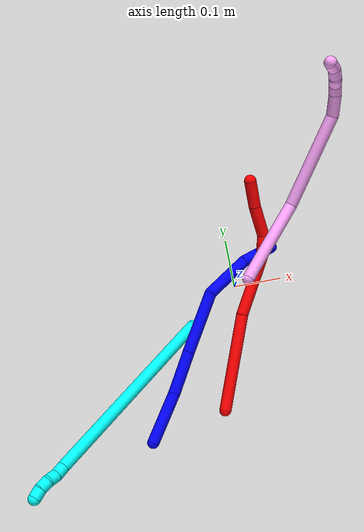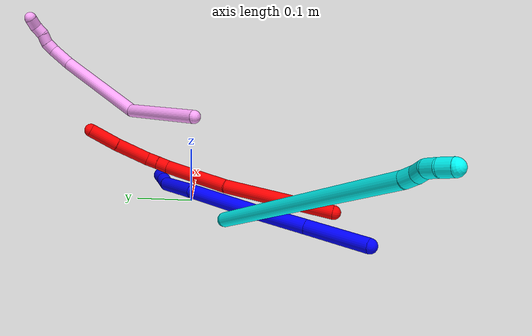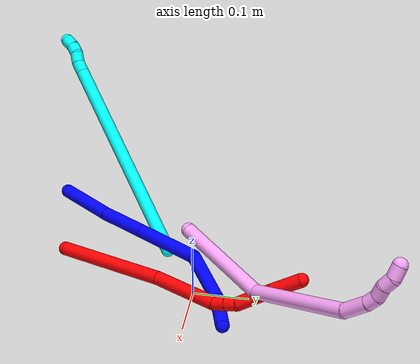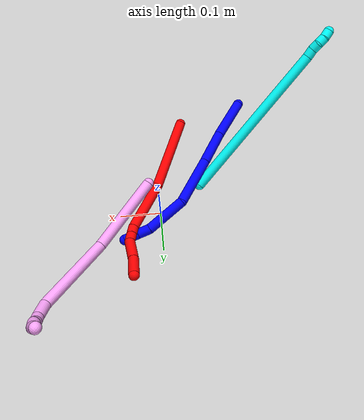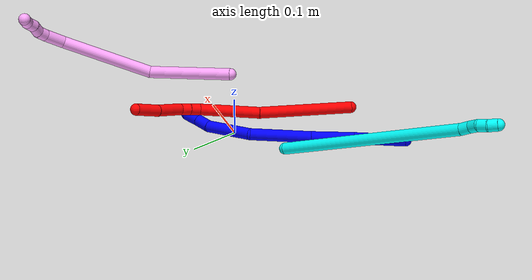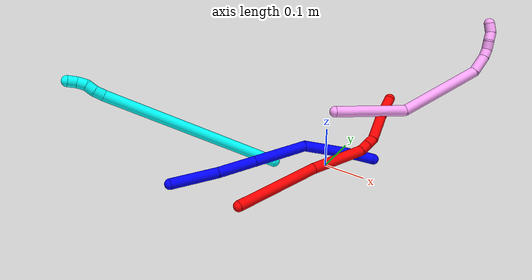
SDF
<sdf version="1.7">
 <world name="default">
  <plugin name="TubeGeneratorPlugin" filename="libtube_generator_plugin.so"/>
  <model name="photoneo_s_sensor">
   <static>1</static>
   <pose>0 0 2 1.57079 1.57079 3.14159</pose>
   <link name="link">
    <inertial><mass>0.1</mass></inertial>
    <sensor name="sensor" type="depth">
     <update_rate>30</update_rate>
     <camera>
      <horizontal_fov>1.22</horizontal_fov>
      <image><width>1920</width><height>1200</height><format>B8G8R8</format></image>
      <clip><near>0.1</near><far>4</far></clip>
      <depth_camera><output>points</output></depth_camera>
     </camera>
     <plugin name="camera_plugin" filename="libgazebo_ros_depth_camera.so">
      <baseline>0.2</baseline>
      <alwaysOn>1</alwaysOn>
      <updateRate>0.0</updateRate>
      <cameraName>camera_ir</cameraName>
      <imageTopicName>/camera/color/image_raw</imageTopicName>
      <cameraInfoTopicName>/camera/color/camera_info</cameraInfoTopicName>
      <depthImageTopicName>/camera/depth/image_raw</depthImageTopicName>
      <depthImageCameraInfoTopicName>/camera/depth/camera_info</depthImageCameraInfoTopicName>
      <pointCloudTopicName>/camera/depth/points</pointCloudTopicName>
      <frameName>fr_optical</frameName>
      <pointCloudCutoff>0.1</pointCloudCutoff>
      <pointCloudCutoffMax>2.0</pointCloudCutoffMax>
      <distortionK1>0</distortionK1>
      <distortionK2>0</distortionK2>
      <distortionK3>0</distortionK3>
      <distortionT1>0</distortionT1>
      <distortionT2>0</distortionT2>
      <CxPrime>0</CxPrime>
      <Cx>0</Cx>
      <Cy>0</Cy>
      <focalLength>0</focalLength>
      <hackBaseline>0</hackBaseline>
     </plugin>
    </sensor>
   </link>
  </model>
  <gravity>0 0 -9.8</gravity>
  <magnetic_field>6e-06 2.3e-05 -4.2e-05</magnetic_field>
  <atmosphere type="adiabatic"/>
  <physics name="default_physics" default="0" type="ode">
   <max_step_size>0.003</max_step_size>
   <real_time_factor>1</real_time_factor>
   <real_time_update_rate>1000</real_time_update_rate>
   <max_contacts>10000</max_contacts>
   <ode>
    <solver>
     <type>quick</type>
     <iters>100</iters>
     <sor>1.3</sor>
     <use_dynamic_moi_rescaling>0</use_dynamic_moi_rescaling>
    </solver>
    <constraints>
     <contact_max_correcting_vel>0</contact_max_correcting_vel>
     <contact_surface_layer>0.001</contact_surface_layer>
     <cfm>0</cfm>
     <erp>0.2</erp>
    </constraints>
   </ode>
  </physics>
  <scene><ambient>0.4 0.4 0.4 1</ambient><background>0.7 0.7 0.7 1</background><shadows>0</shadows></scene>
  <audio><device>default</device></audio>
  <spherical_coordinates>
   <surface_model>EARTH_WGS84</surface_model>
   <latitude_deg>0</latitude_deg>
   <longitude_deg>0</longitude_deg>
   <elevation>0</elevation>
   <heading_deg>0</heading_deg>
  </spherical_coordinates>
  <model name="bin">
   <static>1</static>
   <link name="bottom">
    <collision name="collision-bottom">
     <pose>0 0 -0.01 0 -0 0</pose>
     <geometry><box><size>0.8 0.6 0.02</size></box></geometry>
     <surface>
      <friction><ode><mu>100</mu><mu2>100</mu2></ode></friction>
      <contact><collide_bitmask>65535</collide_bitmask></contact>
     </surface>
    </collision>
   </link>
   <link name="west_wall">
    <collision name="collision-west_wall">
     <pose>-0.41 0 0.1 0 -0 0</pose>
     <geometry><box><size>0.02 0.6 0.2</size></box></geometry>
     <surface>
      <friction><ode><mu>100</mu><mu2>100</mu2></ode></friction>
      <contact><collide_bitmask>65535</collide_bitmask></contact>
     </surface>
    </collision>
   </link>
   <link name="east_wall">
    <collision name="collision-east_wall">
     <pose>0.41 0 0.1 0 -0 0</pose>
     <geometry><box><size>0.02 0.6 0.2</size></box></geometry>
     <surface>
      <friction><ode><mu>100</mu><mu2>100</mu2></ode></friction>
      <contact><collide_bitmask>65535</collide_bitmask></contact>
     </surface>
    </collision>
   </link>
   <link name="south_wall">
    <collision name="collision-south_wall">
     <pose>0 -0.31 0.1 0 -0 0</pose>
     <geometry><box><size>0.8 0.02 0.2</size></box></geometry>
     <surface>
      <friction><ode><mu>100</mu><mu2>100</mu2></ode></friction>
      <contact><collide_bitmask>65535</collide_bitmask></contact>
     </surface>
    </collision>
   </link>
   <link name="north_wall">
    <collision name="collision-north_wall">
     <pose>0 0.31 0.1 0 -0 0</pose>
     <geometry><box><size>0.8 0.02 0.2</size></box></geometry>
     <surface>
      <friction><ode><mu>100</mu><mu2>100</mu2></ode></friction>
      <contact><collide_bitmask>65535</collide_bitmask></contact>
     </surface>
    </collision>
   </link>
  </model>
  <model name="1">
   <static>0</static>
   <link name="1">
    <collision name="collision-cylinder-e_1_1_4">
     <pose>0.029127 0.038274 -0.026331 -2.17339 0.560019 -1.00088</pose>
     <geometry><cylinder><radius>0.0125</radius><length>0.109666</length></cylinder></geometry>
     <surface>
      <friction><ode><mu>1.16</mu><mu2>1.16</mu2><slip1>0</slip1><slip2>0</slip2></ode></friction>
      <contact><ode><kp>1e+06</kp><kd>1</kd><max_vel>0</max_vel><min_depth>0.001</min_depth></ode></contact>
     </surface>
    </collision>
    <visual name="visual-cylinder-e_1_1_4">
     <pose>0.029127 0.038274 -0.026331 -2.17339 0.560019 -1.00088</pose>
     <geometry><cylinder><radius>0.0125</radius><length>0.109666</length></cylinder></geometry>
     <material><ambient>0 0 1 1</ambient></material>
    </visual>
    <collision name="collision-cylinder-e_2_4_5">
     <pose>0.083657 0.109549 -0.071668 -2.09335 0.588262 -0.965378</pose>
     <geometry><cylinder><radius>0.0125</radius><length>0.091555</length></cylinder></geometry>
     <surface>
      <friction><ode><mu>1.16</mu><mu2>1.16</mu2><slip1>0</slip1><slip2>0</slip2></ode></friction>
      <contact><ode><kp>1e+06</kp><kd>1</kd><max_vel>0</max_vel><min_depth>0.001</min_depth></ode></contact>
     </surface>
    </collision>
    <visual name="visual-cylinder-e_2_4_5">
     <pose>0.083657 0.109549 -0.071668 -2.09335 0.588262 -0.965378</pose>
     <geometry><cylinder><radius>0.0125</radius><length>0.091555</length></cylinder></geometry>
     <material><ambient>0 0 1 1</ambient></material>
    </visual>
    <collision name="collision-cylinder-e_3_5_6">
     <pose>0.146124 0.188207 -0.118401 -2.11654 0.606598 -1.01516</pose>
     <geometry><cylinder><radius>0.0125</radius><length>0.130032</length></cylinder></geometry>
     <surface>
      <friction><ode><mu>1.16</mu><mu2>1.16</mu2><slip1>0</slip1><slip2>0</slip2></ode></friction>
      <contact><ode><kp>1e+06</kp><kd>1</kd><max_vel>0</max_vel><min_depth>0.001</min_depth></ode></contact>
     </surface>
    </collision>
    <visual name="visual-cylinder-e_3_5_6">
     <pose>0.146124 0.188207 -0.118401 -2.11654 0.606598 -1.01516</pose>
     <geometry><cylinder><radius>0.0125</radius><length>0.130032</length></cylinder></geometry>
     <material><ambient>0 0 1 1</ambient></material>
    </visual>
    <collision name="collision-cylinder-e_4_6_7">
     <pose>0.199613 0.259601 -0.187464 -2.58472 0.325327 -1.04231</pose>
     <geometry><cylinder><radius>0.0125</radius><length>0.102779</length></cylinder></geometry>
     <surface>
      <friction><ode><mu>1.16</mu><mu2>1.16</mu2><slip1>0</slip1><slip2>0</slip2></ode></friction>
      <contact><ode><kp>1e+06</kp><kd>1</kd><max_vel>0</max_vel><min_depth>0.001</min_depth></ode></contact>
     </surface>
    </collision>
    <visual name="visual-cylinder-e_4_6_7">
     <pose>0.199613 0.259601 -0.187464 -2.58472 0.325327 -1.04231</pose>
     <geometry><cylinder><radius>0.0125</radius><length>0.102779</length></cylinder></geometry>
     <material><ambient>0 0 1 1</ambient></material>
    </visual>
    <collision name="collision-cylinder-e_5_7_8">
     <pose>0.221598 0.288711 -0.242786 -2.9049 0.368791 -2.00653</pose>
     <geometry><cylinder><radius>0.0125</radius><length>0.030846</length></cylinder></geometry>
     <surface>
      <friction><ode><mu>1.16</mu><mu2>1.16</mu2><slip1>0</slip1><slip2>0</slip2></ode></friction>
      <contact><ode><kp>1e+06</kp><kd>1</kd><max_vel>0</max_vel><min_depth>0.001</min_depth></ode></contact>
     </surface>
    </collision>
    <visual name="visual-cylinder-e_5_7_8">
     <pose>0.221598 0.288711 -0.242786 -2.9049 0.368791 -2.00653</pose>
     <geometry><cylinder><radius>0.0125</radius><length>0.030846</length></cylinder></geometry>
     <material><ambient>0 0 1 1</ambient></material>
    </visual>
    <collision name="collision-cylinder-e_6_8_2">
     <pose>0.232746 0.296376 -0.272856 -2.88086 0.323861 -1.78896</pose>
     <geometry><cylinder><radius>0.0125</radius><length>0.035122</length></cylinder></geometry>
     <surface>
      <friction><ode><mu>1.16</mu><mu2>1.16</mu2><slip1>0</slip1><slip2>0</slip2></ode></friction>
      <contact><ode><kp>1e+06</kp><kd>1</kd><max_vel>0</max_vel><min_depth>0.001</min_depth></ode></contact>
     </surface>
    </collision>
    <visual name="visual-cylinder-e_6_8_2">
     <pose>0.232746 0.296376 -0.272856 -2.88086 0.323861 -1.78896</pose>
     <geometry><cylinder><radius>0.0125</radius><length>0.035122</length></cylinder></geometry>
     <material><ambient>0 0 1 1</ambient></material>
    </visual>
    <collision name="collision-sphere-2">
     <pose>0.238335 0.300668 -0.288942 0 -0 0</pose>
     <geometry><sphere><radius>0.0125</radius></sphere></geometry>
     <surface>
      <friction><ode><mu>1.16</mu><mu2>1.16</mu2><slip1>0</slip1><slip2>0</slip2></ode></friction>
      <contact><ode><kp>1e+06</kp><kd>1</kd><max_vel>0</max_vel><min_depth>0.001</min_depth></ode></contact>
     </surface>
    </collision>
    <visual name="visual-sphere-2">
     <pose>0.238335 0.300668 -0.288942 0 -0 0</pose>
     <geometry><sphere><radius>0.0125</radius></sphere></geometry>
     <material><ambient>0 0 1 1</ambient></material>
    </visual>
    <collision name="collision-sphere-4">
     <pose>0.058255 0.076549 -0.052662 0 -0 0</pose>
     <geometry><sphere><radius>0.0125</radius></sphere></geometry>
     <surface>
      <friction><ode><mu>1.16</mu><mu2>1.16</mu2><slip1>0</slip1><slip2>0</slip2></ode></friction>
      <contact><ode><kp>1e+06</kp><kd>1</kd><max_vel>0</max_vel><min_depth>0.001</min_depth></ode></contact>
     </surface>
    </collision>
    <visual name="visual-sphere-4">
     <pose>0.058255 0.076549 -0.052662 0 -0 0</pose>
     <geometry><sphere><radius>0.0125</radius></sphere></geometry>
     <material><ambient>0 0 1 1</ambient></material>
    </visual>
    <collision name="collision-sphere-1">
     <geometry><sphere><radius>0.0125</radius></sphere></geometry>
     <surface>
      <friction><ode><mu>1.16</mu><mu2>1.16</mu2><slip1>0</slip1><slip2>0</slip2></ode></friction>
      <contact><ode><kp>1e+06</kp><kd>1</kd><max_vel>0</max_vel><min_depth>0.001</min_depth></ode></contact>
     </surface>
    </collision>
    <visual name="visual-sphere-1">
     <geometry><sphere><radius>0.0125</radius></sphere></geometry>
     <material><ambient>0 0 1 1</ambient></material>
    </visual>
    <collision name="collision-sphere-8">
     <pose>0.227158 0.292084 -0.256771 0 -0 0</pose>
     <geometry><sphere><radius>0.0125</radius></sphere></geometry>
     <surface>
      <friction><ode><mu>1.16</mu><mu2>1.16</mu2><slip1>0</slip1><slip2>0</slip2></ode></friction>
      <contact><ode><kp>1e+06</kp><kd>1</kd><max_vel>0</max_vel><min_depth>0.001</min_depth></ode></contact>
     </surface>
    </collision>
    <visual name="visual-sphere-8">
     <pose>0.227158 0.292084 -0.256771 0 -0 0</pose>
     <geometry><sphere><radius>0.0125</radius></sphere></geometry>
     <material><ambient>0 0 1 1</ambient></material>
    </visual>
    <collision name="collision-sphere-5">
     <pose>0.10906 0.14255 -0.090675 0 -0 0</pose>
     <geometry><sphere><radius>0.0125</radius></sphere></geometry>
     <surface>
      <friction><ode><mu>1.16</mu><mu2>1.16</mu2><slip1>0</slip1><slip2>0</slip2></ode></friction>
      <contact><ode><kp>1e+06</kp><kd>1</kd><max_vel>0</max_vel><min_depth>0.001</min_depth></ode></contact>
     </surface>
    </collision>
    <visual name="visual-sphere-5">
     <pose>0.10906 0.14255 -0.090675 0 -0 0</pose>
     <geometry><sphere><radius>0.0125</radius></sphere></geometry>
     <material><ambient>0 0 1 1</ambient></material>
    </visual>
    <collision name="collision-sphere-6">
     <pose>0.183188 0.233864 -0.146127 0 -0 0</pose>
     <geometry><sphere><radius>0.0125</radius></sphere></geometry>
     <surface>
      <friction><ode><mu>1.16</mu><mu2>1.16</mu2><slip1>0</slip1><slip2>0</slip2></ode></friction>
      <contact><ode><kp>1e+06</kp><kd>1</kd><max_vel>0</max_vel><min_depth>0.001</min_depth></ode></contact>
     </surface>
    </collision>
    <visual name="visual-sphere-6">
     <pose>0.183188 0.233864 -0.146127 0 -0 0</pose>
     <geometry><sphere><radius>0.0125</radius></sphere></geometry>
     <material><ambient>0 0 1 1</ambient></material>
    </visual>
    <collision name="collision-sphere-7">
     <pose>0.216038 0.285337 -0.228801 0 -0 0</pose>
     <geometry><sphere><radius>0.0125</radius></sphere></geometry>
     <surface>
      <friction><ode><mu>1.16</mu><mu2>1.16</mu2><slip1>0</slip1><slip2>0</slip2></ode></friction>
      <contact><ode><kp>1e+06</kp><kd>1</kd><max_vel>0</max_vel><min_depth>0.001</min_depth></ode></contact>
     </surface>
    </collision>
    <visual name="visual-sphere-7">
     <pose>0.216038 0.285337 -0.228801 0 -0 0</pose>
     <geometry><sphere><radius>0.0125</radius></sphere></geometry>
     <material><ambient>0 0 1 1</ambient></material>
    </visual>
    <inertial>
     <pose>0.130761 0.169393 -0.12237 0 -0 0</pose>
     <mass>0.5</mass>
     <inertia>
      <ixx>-0.000117</ixx>
      <ixy>0</ixy>
      <ixz>0</ixz>
      <iyy>-0.000303</iyy>
      <iyz>0</iyz>
      <izz>-0.000571</izz>
     </inertia>
    </inertial>
   </link>
   <pose>-0.228603 -0.288501 0.035018 -0.927452 -0.999058 0.944711</pose>
  </model>
  <model name="2">
   <static>0</static>
   <link name="2">
    <collision name="collision-cylinder-e_1_1_4">
     <pose>-0.046371 0.090191 0.005337 -1.51169 -0.474185 0.447883</pose>
     <geometry><cylinder><radius>0.0125</radius><length>0.203108</length></cylinder></geometry>
     <surface>
      <friction><ode><mu>1.16</mu><mu2>1.16</mu2><slip1>0</slip1><slip2>0</slip2></ode></friction>
      <contact><ode><kp>1e+06</kp><kd>1</kd><max_vel>0</max_vel><min_depth>0.001</min_depth></ode></contact>
     </surface>
    </collision>
    <visual name="visual-cylinder-e_1_1_4">
     <pose>-0.046371 0.090191 0.005337 -1.51169 -0.474185 0.447883</pose>
     <geometry><cylinder><radius>0.0125</radius><length>0.203108</length></cylinder></geometry>
     <material><ambient>1 0 0 1</ambient></material>
    </visual>
    <collision name="collision-cylinder-e_2_4_5">
     <pose>-0.130687 0.232969 0.011712 -1.55105 -0.624967 0.613502</pose>
     <geometry><cylinder><radius>0.0125</radius><length>0.129711</length></cylinder></geometry>
     <surface>
      <friction><ode><mu>1.16</mu><mu2>1.16</mu2><slip1>0</slip1><slip2>0</slip2></ode></friction>
      <contact><ode><kp>1e+06</kp><kd>1</kd><max_vel>0</max_vel><min_depth>0.001</min_depth></ode></contact>
     </surface>
    </collision>
    <visual name="visual-cylinder-e_2_4_5">
     <pose>-0.130687 0.232969 0.011712 -1.55105 -0.624967 0.613502</pose>
     <geometry><cylinder><radius>0.0125</radius><length>0.129711</length></cylinder></geometry>
     <material><ambient>1 0 0 1</ambient></material>
    </visual>
    <collision name="collision-cylinder-e_3_5_6">
     <pose>-0.172021 0.296306 0.010948 -1.73701 -0.301422 0.355142</pose>
     <geometry><cylinder><radius>0.0125</radius><length>0.022832</length></cylinder></geometry>
     <surface>
      <friction><ode><mu>1.16</mu><mu2>1.16</mu2><slip1>0</slip1><slip2>0</slip2></ode></friction>
      <contact><ode><kp>1e+06</kp><kd>1</kd><max_vel>0</max_vel><min_depth>0.001</min_depth></ode></contact>
     </surface>
    </collision>
    <visual name="visual-cylinder-e_3_5_6">
     <pose>-0.172021 0.296306 0.010948 -1.73701 -0.301422 0.355142</pose>
     <geometry><cylinder><radius>0.0125</radius><length>0.022832</length></cylinder></geometry>
     <material><ambient>1 0 0 1</ambient></material>
    </visual>
    <collision name="collision-cylinder-e_4_6_7">
     <pose>-0.17875 0.317481 0.007714 -1.70718 -0.307404 0.351605</pose>
     <geometry><cylinder><radius>0.0125</radius><length>0.022078</length></cylinder></geometry>
     <surface>
      <friction><ode><mu>1.16</mu><mu2>1.16</mu2><slip1>0</slip1><slip2>0</slip2></ode></friction>
      <contact><ode><kp>1e+06</kp><kd>1</kd><max_vel>0</max_vel><min_depth>0.001</min_depth></ode></contact>
     </surface>
    </collision>
    <visual name="visual-cylinder-e_4_6_7">
     <pose>-0.17875 0.317481 0.007714 -1.70718 -0.307404 0.351605</pose>
     <geometry><cylinder><radius>0.0125</radius><length>0.022078</length></cylinder></geometry>
     <material><ambient>1 0 0 1</ambient></material>
    </visual>
    <collision name="collision-cylinder-e_5_7_8">
     <pose>-0.179902 0.359105 -0.003661 -1.87933 0.06672 -0.091262</pose>
     <geometry><cylinder><radius>0.0125</radius><length>0.06564</length></cylinder></geometry>
     <surface>
      <friction><ode><mu>1.16</mu><mu2>1.16</mu2><slip1>0</slip1><slip2>0</slip2></ode></friction>
      <contact><ode><kp>1e+06</kp><kd>1</kd><max_vel>0</max_vel><min_depth>0.001</min_depth></ode></contact>
     </surface>
    </collision>
    <visual name="visual-cylinder-e_5_7_8">
     <pose>-0.179902 0.359105 -0.003661 -1.87933 0.06672 -0.091262</pose>
     <geometry><cylinder><radius>0.0125</radius><length>0.06564</length></cylinder></geometry>
     <material><ambient>1 0 0 1</ambient></material>
    </visual>
    <collision name="collision-cylinder-e_6_8_2">
     <pose>-0.178667 0.416887 -0.023316 -1.92107 -0.033669 0.048142</pose>
     <geometry><cylinder><radius>0.0125</radius><length>0.056632</length></cylinder></geometry>
     <surface>
      <friction><ode><mu>1.16</mu><mu2>1.16</mu2><slip1>0</slip1><slip2>0</slip2></ode></friction>
      <contact><ode><kp>1e+06</kp><kd>1</kd><max_vel>0</max_vel><min_depth>0.001</min_depth></ode></contact>
     </surface>
    </collision>
    <visual name="visual-cylinder-e_6_8_2">
     <pose>-0.178667 0.416887 -0.023316 -1.92107 -0.033669 0.048142</pose>
     <geometry><cylinder><radius>0.0125</radius><length>0.056632</length></cylinder></geometry>
     <material><ambient>1 0 0 1</ambient></material>
    </visual>
    <collision name="collision-sphere-2">
     <pose>-0.179621 0.443469 -0.033028 0 -0 0</pose>
     <geometry><sphere><radius>0.0125</radius></sphere></geometry>
     <surface>
      <friction><ode><mu>1.16</mu><mu2>1.16</mu2><slip1>0</slip1><slip2>0</slip2></ode></friction>
      <contact><ode><kp>1e+06</kp><kd>1</kd><max_vel>0</max_vel><min_depth>0.001</min_depth></ode></contact>
     </surface>
    </collision>
    <visual name="visual-sphere-2">
     <pose>-0.179621 0.443469 -0.033028 0 -0 0</pose>
     <geometry><sphere><radius>0.0125</radius></sphere></geometry>
     <material><ambient>1 0 0 1</ambient></material>
    </visual>
    <collision name="collision-sphere-4">
     <pose>-0.092742 0.180382 0.010674 0 -0 0</pose>
     <geometry><sphere><radius>0.0125</radius></sphere></geometry>
     <surface>
      <friction><ode><mu>1.16</mu><mu2>1.16</mu2><slip1>0</slip1><slip2>0</slip2></ode></friction>
      <contact><ode><kp>1e+06</kp><kd>1</kd><max_vel>0</max_vel><min_depth>0.001</min_depth></ode></contact>
     </surface>
    </collision>
    <visual name="visual-sphere-4">
     <pose>-0.092742 0.180382 0.010674 0 -0 0</pose>
     <geometry><sphere><radius>0.0125</radius></sphere></geometry>
     <material><ambient>1 0 0 1</ambient></material>
    </visual>
    <collision name="collision-sphere-1">
     <geometry><sphere><radius>0.0125</radius></sphere></geometry>
     <surface>
      <friction><ode><mu>1.16</mu><mu2>1.16</mu2><slip1>0</slip1><slip2>0</slip2></ode></friction>
      <contact><ode><kp>1e+06</kp><kd>1</kd><max_vel>0</max_vel><min_depth>0.001</min_depth></ode></contact>
     </surface>
    </collision>
    <visual name="visual-sphere-1">
     <geometry><sphere><radius>0.0125</radius></sphere></geometry>
     <material><ambient>1 0 0 1</ambient></material>
    </visual>
    <collision name="collision-sphere-8">
     <pose>-0.177714 0.390305 -0.013605 0 -0 0</pose>
     <geometry><sphere><radius>0.0125</radius></sphere></geometry>
     <surface>
      <friction><ode><mu>1.16</mu><mu2>1.16</mu2><slip1>0</slip1><slip2>0</slip2></ode></friction>
      <contact><ode><kp>1e+06</kp><kd>1</kd><max_vel>0</max_vel><min_depth>0.001</min_depth></ode></contact>
     </surface>
    </collision>
    <visual name="visual-sphere-8">
     <pose>-0.177714 0.390305 -0.013605 0 -0 0</pose>
     <geometry><sphere><radius>0.0125</radius></sphere></geometry>
     <material><ambient>1 0 0 1</ambient></material>
    </visual>
    <collision name="collision-sphere-5">
     <pose>-0.168632 0.285555 0.012751 0 -0 0</pose>
     <geometry><sphere><radius>0.0125</radius></sphere></geometry>
     <surface>
      <friction><ode><mu>1.16</mu><mu2>1.16</mu2><slip1>0</slip1><slip2>0</slip2></ode></friction>
      <contact><ode><kp>1e+06</kp><kd>1</kd><max_vel>0</max_vel><min_depth>0.001</min_depth></ode></contact>
     </surface>
    </collision>
    <visual name="visual-sphere-5">
     <pose>-0.168632 0.285555 0.012751 0 -0 0</pose>
     <geometry><sphere><radius>0.0125</radius></sphere></geometry>
     <material><ambient>1 0 0 1</ambient></material>
    </visual>
    <collision name="collision-sphere-6">
     <pose>-0.17541 0.307057 0.009144 0 -0 0</pose>
     <geometry><sphere><radius>0.0125</radius></sphere></geometry>
     <surface>
      <friction><ode><mu>1.16</mu><mu2>1.16</mu2><slip1>0</slip1><slip2>0</slip2></ode></friction>
      <contact><ode><kp>1e+06</kp><kd>1</kd><max_vel>0</max_vel><min_depth>0.001</min_depth></ode></contact>
     </surface>
    </collision>
    <visual name="visual-sphere-6">
     <pose>-0.17541 0.307057 0.009144 0 -0 0</pose>
     <geometry><sphere><radius>0.0125</radius></sphere></geometry>
     <material><ambient>1 0 0 1</ambient></material>
    </visual>
    <collision name="collision-sphere-7">
     <pose>-0.18209 0.327904 0.006283 0 -0 0</pose>
     <geometry><sphere><radius>0.0125</radius></sphere></geometry>
     <surface>
      <friction><ode><mu>1.16</mu><mu2>1.16</mu2><slip1>0</slip1><slip2>0</slip2></ode></friction>
      <contact><ode><kp>1e+06</kp><kd>1</kd><max_vel>0</max_vel><min_depth>0.001</min_depth></ode></contact>
     </surface>
    </collision>
    <visual name="visual-sphere-7">
     <pose>-0.18209 0.327904 0.006283 0 -0 0</pose>
     <geometry><sphere><radius>0.0125</radius></sphere></geometry>
     <material><ambient>1 0 0 1</ambient></material>
    </visual>
    <inertial>
     <pose>-0.112342 0.218985 0.002925 0 -0 0</pose>
     <mass>0.5</mass>
     <inertia>
      <ixx>0.001082</ixx>
      <ixy>0</ixy>
      <ixz>0</ixz>
      <iyy>0.000623</iyy>
      <iyz>0</iyz>
      <izz>-0.000394</izz>
     </inertia>
    </inertial>
   </link>
   <pose>-0.069531 -0.252229 0.016952 2.97147 -0.085744 -3.02543</pose>
  </model>
  <model name="3">
   <static>0</static>
   <link name="3">
    <collision name="collision-cylinder-e_1_1_4">
     <pose>-0.020736 0.002027 0.207731 -0.009756 -0.099487 0.000486</pose>
     <geometry><cylinder><radius>0.0125</radius><length>0.417547</length></cylinder></geometry>
     <surface>
      <friction><ode><mu>1.16</mu><mu2>1.16</mu2><slip1>0</slip1><slip2>0</slip2></ode></friction>
      <contact><ode><kp>1e+06</kp><kd>1</kd><max_vel>0</max_vel><min_depth>0.001</min_depth></ode></contact>
     </surface>
    </collision>
    <visual name="visual-cylinder-e_1_1_4">
     <pose>-0.020736 0.002027 0.207731 -0.009756 -0.099487 0.000486</pose>
     <geometry><cylinder><radius>0.0125</radius><length>0.417547</length></cylinder></geometry>
     <material><ambient>0.003922 1 0.996078 1</ambient></material>
    </visual>
    <collision name="collision-cylinder-e_2_4_5">
     <pose>-0.042293 0.005606 0.426341 -0.141803 -0.074561 0.005298</pose>
     <geometry><cylinder><radius>0.0125</radius><length>0.022038</length></cylinder></geometry>
     <surface>
      <friction><ode><mu>1.16</mu><mu2>1.16</mu2><slip1>0</slip1><slip2>0</slip2></ode></friction>
      <contact><ode><kp>1e+06</kp><kd>1</kd><max_vel>0</max_vel><min_depth>0.001</min_depth></ode></contact>
     </surface>
    </collision>
    <visual name="visual-cylinder-e_2_4_5">
     <pose>-0.042293 0.005606 0.426341 -0.141803 -0.074561 0.005298</pose>
     <geometry><cylinder><radius>0.0125</radius><length>0.022038</length></cylinder></geometry>
     <material><ambient>0.003922 1 0.996078 1</ambient></material>
    </visual>
    <collision name="collision-cylinder-e_3_5_6">
     <pose>-0.046263 0.009068 0.44654 -0.201969 -0.319641 0.032665</pose>
     <geometry><cylinder><radius>0.0125</radius><length>0.020046</length></cylinder></geometry>
     <surface>
      <friction><ode><mu>1.16</mu><mu2>1.16</mu2><slip1>0</slip1><slip2>0</slip2></ode></friction>
      <contact><ode><kp>1e+06</kp><kd>1</kd><max_vel>0</max_vel><min_depth>0.001</min_depth></ode></contact>
     </surface>
    </collision>
    <visual name="visual-cylinder-e_3_5_6">
     <pose>-0.046263 0.009068 0.44654 -0.201969 -0.319641 0.032665</pose>
     <geometry><cylinder><radius>0.0125</radius><length>0.020046</length></cylinder></geometry>
     <material><ambient>0.003922 1 0.996078 1</ambient></material>
    </visual>
    <collision name="collision-cylinder-e_4_6_7">
     <pose>-0.050568 0.009803 0.465787 0.117706 -0.115067 -0.006787</pose>
     <geometry><cylinder><radius>0.0125</radius><length>0.020122</length></cylinder></geometry>
     <surface>
      <friction><ode><mu>1.16</mu><mu2>1.16</mu2><slip1>0</slip1><slip2>0</slip2></ode></friction>
      <contact><ode><kp>1e+06</kp><kd>1</kd><max_vel>0</max_vel><min_depth>0.001</min_depth></ode></contact>
     </surface>
    </collision>
    <visual name="visual-cylinder-e_4_6_7">
     <pose>-0.050568 0.009803 0.465787 0.117706 -0.115067 -0.006787</pose>
     <geometry><cylinder><radius>0.0125</radius><length>0.020122</length></cylinder></geometry>
     <material><ambient>0.003922 1 0.996078 1</ambient></material>
    </visual>
    <collision name="collision-cylinder-e_5_7_2">
     <pose>-0.050448 0.007149 0.485646 0.147902 0.126241 0.009365</pose>
     <geometry><cylinder><radius>0.0125</radius><length>0.020248</length></cylinder></geometry>
     <surface>
      <friction><ode><mu>1.16</mu><mu2>1.16</mu2><slip1>0</slip1><slip2>0</slip2></ode></friction>
      <contact><ode><kp>1e+06</kp><kd>1</kd><max_vel>0</max_vel><min_depth>0.001</min_depth></ode></contact>
     </surface>
    </collision>
    <visual name="visual-cylinder-e_5_7_2">
     <pose>-0.050448 0.007149 0.485646 0.147902 0.126241 0.009365</pose>
     <geometry><cylinder><radius>0.0125</radius><length>0.020248</length></cylinder></geometry>
     <material><ambient>0.003922 1 0.996078 1</ambient></material>
    </visual>
    <collision name="collision-sphere-2">
     <pose>-0.049174 0.005669 0.49558 0 -0 0</pose>
     <geometry><sphere><radius>0.0125</radius></sphere></geometry>
     <surface>
      <friction><ode><mu>1.16</mu><mu2>1.16</mu2><slip1>0</slip1><slip2>0</slip2></ode></friction>
      <contact><ode><kp>1e+06</kp><kd>1</kd><max_vel>0</max_vel><min_depth>0.001</min_depth></ode></contact>
     </surface>
    </collision>
    <visual name="visual-sphere-2">
     <pose>-0.049174 0.005669 0.49558 0 -0 0</pose>
     <geometry><sphere><radius>0.0125</radius></sphere></geometry>
     <material><ambient>0.003922 1 0.996078 1</ambient></material>
    </visual>
    <collision name="collision-sphere-7">
     <pose>-0.051723 0.008629 0.475712 0 -0 0</pose>
     <geometry><sphere><radius>0.0125</radius></sphere></geometry>
     <surface>
      <friction><ode><mu>1.16</mu><mu2>1.16</mu2><slip1>0</slip1><slip2>0</slip2></ode></friction>
      <contact><ode><kp>1e+06</kp><kd>1</kd><max_vel>0</max_vel><min_depth>0.001</min_depth></ode></contact>
     </surface>
    </collision>
    <visual name="visual-sphere-7">
     <pose>-0.051723 0.008629 0.475712 0 -0 0</pose>
     <geometry><sphere><radius>0.0125</radius></sphere></geometry>
     <material><ambient>0.003922 1 0.996078 1</ambient></material>
    </visual>
    <collision name="collision-sphere-6">
     <pose>-0.049413 0.010977 0.455862 0 -0 0</pose>
     <geometry><sphere><radius>0.0125</radius></sphere></geometry>
     <surface>
      <friction><ode><mu>1.16</mu><mu2>1.16</mu2><slip1>0</slip1><slip2>0</slip2></ode></friction>
      <contact><ode><kp>1e+06</kp><kd>1</kd><max_vel>0</max_vel><min_depth>0.001</min_depth></ode></contact>
     </surface>
    </collision>
    <visual name="visual-sphere-6">
     <pose>-0.049413 0.010977 0.455862 0 -0 0</pose>
     <geometry><sphere><radius>0.0125</radius></sphere></geometry>
     <material><ambient>0.003922 1 0.996078 1</ambient></material>
    </visual>
    <collision name="collision-sphere-5">
     <pose>-0.043114 0.007159 0.437219 0 -0 0</pose>
     <geometry><sphere><radius>0.0125</radius></sphere></geometry>
     <surface>
      <friction><ode><mu>1.16</mu><mu2>1.16</mu2><slip1>0</slip1><slip2>0</slip2></ode></friction>
      <contact><ode><kp>1e+06</kp><kd>1</kd><max_vel>0</max_vel><min_depth>0.001</min_depth></ode></contact>
     </surface>
    </collision>
    <visual name="visual-sphere-5">
     <pose>-0.043114 0.007159 0.437219 0 -0 0</pose>
     <geometry><sphere><radius>0.0125</radius></sphere></geometry>
     <material><ambient>0.003922 1 0.996078 1</ambient></material>
    </visual>
    <collision name="collision-sphere-1">
     <geometry><sphere><radius>0.0125</radius></sphere></geometry>
     <surface>
      <friction><ode><mu>1.16</mu><mu2>1.16</mu2><slip1>0</slip1><slip2>0</slip2></ode></friction>
      <contact><ode><kp>1e+06</kp><kd>1</kd><max_vel>0</max_vel><min_depth>0.001</min_depth></ode></contact>
     </surface>
    </collision>
    <visual name="visual-sphere-1">
     <geometry><sphere><radius>0.0125</radius></sphere></geometry>
     <material><ambient>0.003922 1 0.996078 1</ambient></material>
    </visual>
    <collision name="collision-sphere-4">
     <pose>-0.041472 0.004053 0.415463 0 -0 0</pose>
     <geometry><sphere><radius>0.0125</radius></sphere></geometry>
     <surface>
      <friction><ode><mu>1.16</mu><mu2>1.16</mu2><slip1>0</slip1><slip2>0</slip2></ode></friction>
      <contact><ode><kp>1e+06</kp><kd>1</kd><max_vel>0</max_vel><min_depth>0.001</min_depth></ode></contact>
     </surface>
    </collision>
    <visual name="visual-sphere-4">
     <pose>-0.041472 0.004053 0.415463 0 -0 0</pose>
     <geometry><sphere><radius>0.0125</radius></sphere></geometry>
     <material><ambient>0.003922 1 0.996078 1</ambient></material>
    </visual>
    <inertial>
     <pose>-0.025113 0.002987 0.24858 0 -0 0</pose>
     <mass>0.5</mass>
     <inertia>
      <ixx>0.006058</ixx>
      <ixy>0</ixy>
      <ixz>0</ixz>
      <iyy>0.006092</iyy>
      <iyz>0</iyz>
      <izz>0.000584</izz>
     </inertia>
    </inertial>
   </link>
   <pose>-0.103511 -0.065398 0.011491 1.0958 0.202922 -0.903269</pose>
  </model>
  <model name="4">
   <static>0</static>
   <link name="4">
    <collision name="collision-cylinder-e_1_1_4">
     <pose>0.000183 0.002689 0.088483 -0.030384 0.002072 -3.1e-05</pose>
     <geometry><cylinder><radius>0.0125</radius><length>0.177048</length></cylinder></geometry>
     <surface>
      <friction><ode><mu>1.16</mu><mu2>1.16</mu2><slip1>0</slip1><slip2>0</slip2></ode></friction>
      <contact><ode><kp>1e+06</kp><kd>1</kd><max_vel>0</max_vel><min_depth>0.001</min_depth></ode></contact>
     </surface>
    </collision>
    <visual name="visual-cylinder-e_1_1_4">
     <pose>0.000183 0.002689 0.088483 -0.030384 0.002072 -3.1e-05</pose>
     <geometry><cylinder><radius>0.0125</radius><length>0.177048</length></cylinder></geometry>
     <material><ambient>1 0.65098 0.996078 1</ambient></material>
    </visual>
    <collision name="collision-cylinder-e_2_4_5">
     <pose>-0.031662 0.042748 0.260958 -0.418614 -0.335254 0.071858</pose>
     <geometry><cylinder><radius>0.0125</radius><length>0.194701</length></cylinder></geometry>
     <surface>
      <friction><ode><mu>1.16</mu><mu2>1.16</mu2><slip1>0</slip1><slip2>0</slip2></ode></friction>
      <contact><ode><kp>1e+06</kp><kd>1</kd><max_vel>0</max_vel><min_depth>0.001</min_depth></ode></contact>
     </surface>
    </collision>
    <visual name="visual-cylinder-e_2_4_5">
     <pose>-0.031662 0.042748 0.260958 -0.418614 -0.335254 0.071858</pose>
     <geometry><cylinder><radius>0.0125</radius><length>0.194701</length></cylinder></geometry>
     <material><ambient>1 0.65098 0.996078 1</ambient></material>
    </visual>
    <collision name="collision-cylinder-e_3_5_6">
     <pose>-0.071199 0.09598 0.358008 -0.882133 -0.350339 0.166715</pose>
     <geometry><cylinder><radius>0.0125</radius><length>0.043748</length></cylinder></geometry>
     <surface>
      <friction><ode><mu>1.16</mu><mu2>1.16</mu2><slip1>0</slip1><slip2>0</slip2></ode></friction>
      <contact><ode><kp>1e+06</kp><kd>1</kd><max_vel>0</max_vel><min_depth>0.001</min_depth></ode></contact>
     </surface>
    </collision>
    <visual name="visual-cylinder-e_3_5_6">
     <pose>-0.071199 0.09598 0.358008 -0.882133 -0.350339 0.166715</pose>
     <geometry><cylinder><radius>0.0125</radius><length>0.043748</length></cylinder></geometry>
     <material><ambient>1 0.65098 0.996078 1</ambient></material>
    </visual>
    <collision name="collision-cylinder-e_4_6_7">
     <pose>-0.082523 0.120348 0.375246 -1.11381 -0.382764 0.24012</pose>
     <geometry><cylinder><radius>0.0125</radius><length>0.020435</length></cylinder></geometry>
     <surface>
      <friction><ode><mu>1.16</mu><mu2>1.16</mu2><slip1>0</slip1><slip2>0</slip2></ode></friction>
      <contact><ode><kp>1e+06</kp><kd>1</kd><max_vel>0</max_vel><min_depth>0.001</min_depth></ode></contact>
     </surface>
    </collision>
    <visual name="visual-cylinder-e_4_6_7">
     <pose>-0.082523 0.120348 0.375246 -1.11381 -0.382764 0.24012</pose>
     <geometry><cylinder><radius>0.0125</radius><length>0.020435</length></cylinder></geometry>
     <material><ambient>1 0.65098 0.996078 1</ambient></material>
    </visual>
    <collision name="collision-cylinder-e_5_7_8">
     <pose>-0.092688 0.137172 0.380324 -1.46359 -0.64922 0.587026</pose>
     <geometry><cylinder><radius>0.0125</radius><length>0.021006</length></cylinder></geometry>
     <surface>
      <friction><ode><mu>1.16</mu><mu2>1.16</mu2><slip1>0</slip1><slip2>0</slip2></ode></friction>
      <contact><ode><kp>1e+06</kp><kd>1</kd><max_vel>0</max_vel><min_depth>0.001</min_depth></ode></contact>
     </surface>
    </collision>
    <visual name="visual-cylinder-e_5_7_8">
     <pose>-0.092688 0.137172 0.380324 -1.46359 -0.64922 0.587026</pose>
     <geometry><cylinder><radius>0.0125</radius><length>0.021006</length></cylinder></geometry>
     <material><ambient>1 0.65098 0.996078 1</ambient></material>
    </visual>
    <collision name="collision-cylinder-e_6_8_9">
     <pose>-0.102714 0.154605 0.38423 -1.25171 -0.365732 0.265758</pose>
     <geometry><cylinder><radius>0.0125</radius><length>0.020558</length></cylinder></geometry>
     <surface>
      <friction><ode><mu>1.16</mu><mu2>1.16</mu2><slip1>0</slip1><slip2>0</slip2></ode></friction>
      <contact><ode><kp>1e+06</kp><kd>1</kd><max_vel>0</max_vel><min_depth>0.001</min_depth></ode></contact>
     </surface>
    </collision>
    <visual name="visual-cylinder-e_6_8_9">
     <pose>-0.102714 0.154605 0.38423 -1.25171 -0.365732 0.265758</pose>
     <geometry><cylinder><radius>0.0125</radius><length>0.020558</length></cylinder></geometry>
     <material><ambient>1 0.65098 0.996078 1</ambient></material>
    </visual>
    <collision name="collision-cylinder-e_7_9_2">
     <pose>-0.110499 0.174054 0.385528 -1.73506 -0.373783 0.438862</pose>
     <geometry><cylinder><radius>0.0125</radius><length>0.022505</length></cylinder></geometry>
     <surface>
      <friction><ode><mu>1.16</mu><mu2>1.16</mu2><slip1>0</slip1><slip2>0</slip2></ode></friction>
      <contact><ode><kp>1e+06</kp><kd>1</kd><max_vel>0</max_vel><min_depth>0.001</min_depth></ode></contact>
     </surface>
    </collision>
    <visual name="visual-cylinder-e_7_9_2">
     <pose>-0.110499 0.174054 0.385528 -1.73506 -0.373783 0.438862</pose>
     <geometry><cylinder><radius>0.0125</radius><length>0.022505</length></cylinder></geometry>
     <material><ambient>1 0.65098 0.996078 1</ambient></material>
    </visual>
    <collision name="collision-sphere-2">
     <pose>-0.114608 0.184388 0.383815 0 -0 0</pose>
     <geometry><sphere><radius>0.0125</radius></sphere></geometry>
     <surface>
      <friction><ode><mu>1.16</mu><mu2>1.16</mu2><slip1>0</slip1><slip2>0</slip2></ode></friction>
      <contact><ode><kp>1e+06</kp><kd>1</kd><max_vel>0</max_vel><min_depth>0.001</min_depth></ode></contact>
     </surface>
    </collision>
    <visual name="visual-sphere-2">
     <pose>-0.114608 0.184388 0.383815 0 -0 0</pose>
     <geometry><sphere><radius>0.0125</radius></sphere></geometry>
     <material><ambient>1 0.65098 0.996078 1</ambient></material>
    </visual>
    <collision name="collision-sphere-9">
     <pose>-0.10639 0.163719 0.387241 0 -0 0</pose>
     <geometry><sphere><radius>0.0125</radius></sphere></geometry>
     <surface>
      <friction><ode><mu>1.16</mu><mu2>1.16</mu2><slip1>0</slip1><slip2>0</slip2></ode></friction>
      <contact><ode><kp>1e+06</kp><kd>1</kd><max_vel>0</max_vel><min_depth>0.001</min_depth></ode></contact>
     </surface>
    </collision>
    <visual name="visual-sphere-9">
     <pose>-0.10639 0.163719 0.387241 0 -0 0</pose>
     <geometry><sphere><radius>0.0125</radius></sphere></geometry>
     <material><ambient>1 0.65098 0.996078 1</ambient></material>
    </visual>
    <collision name="collision-sphere-4">
     <pose>0.000367 0.005379 0.176965 0 -0 0</pose>
     <geometry><sphere><radius>0.0125</radius></sphere></geometry>
     <surface>
      <friction><ode><mu>1.16</mu><mu2>1.16</mu2><slip1>0</slip1><slip2>0</slip2></ode></friction>
      <contact><ode><kp>1e+06</kp><kd>1</kd><max_vel>0</max_vel><min_depth>0.001</min_depth></ode></contact>
     </surface>
    </collision>
    <visual name="visual-sphere-4">
     <pose>0.000367 0.005379 0.176965 0 -0 0</pose>
     <geometry><sphere><radius>0.0125</radius></sphere></geometry>
     <material><ambient>1 0.65098 0.996078 1</ambient></material>
    </visual>
    <collision name="collision-sphere-1">
     <geometry><sphere><radius>0.0125</radius></sphere></geometry>
     <surface>
      <friction><ode><mu>1.16</mu><mu2>1.16</mu2><slip1>0</slip1><slip2>0</slip2></ode></friction>
      <contact><ode><kp>1e+06</kp><kd>1</kd><max_vel>0</max_vel><min_depth>0.001</min_depth></ode></contact>
     </surface>
    </collision>
    <visual name="visual-sphere-1">
     <geometry><sphere><radius>0.0125</radius></sphere></geometry>
     <material><ambient>1 0.65098 0.996078 1</ambient></material>
    </visual>
    <collision name="collision-sphere-8">
     <pose>-0.099038 0.14549 0.381219 0 -0 0</pose>
     <geometry><sphere><radius>0.0125</radius></sphere></geometry>
     <surface>
      <friction><ode><mu>1.16</mu><mu2>1.16</mu2><slip1>0</slip1><slip2>0</slip2></ode></friction>
      <contact><ode><kp>1e+06</kp><kd>1</kd><max_vel>0</max_vel><min_depth>0.001</min_depth></ode></contact>
     </surface>
    </collision>
    <visual name="visual-sphere-8">
     <pose>-0.099038 0.14549 0.381219 0 -0 0</pose>
     <geometry><sphere><radius>0.0125</radius></sphere></geometry>
     <material><ambient>1 0.65098 0.996078 1</ambient></material>
    </visual>
    <collision name="collision-sphere-5">
     <pose>-0.063692 0.080117 0.344951 0 -0 0</pose>
     <geometry><sphere><radius>0.0125</radius></sphere></geometry>
     <surface>
      <friction><ode><mu>1.16</mu><mu2>1.16</mu2><slip1>0</slip1><slip2>0</slip2></ode></friction>
      <contact><ode><kp>1e+06</kp><kd>1</kd><max_vel>0</max_vel><min_depth>0.001</min_depth></ode></contact>
     </surface>
    </collision>
    <visual name="visual-sphere-5">
     <pose>-0.063692 0.080117 0.344951 0 -0 0</pose>
     <geometry><sphere><radius>0.0125</radius></sphere></geometry>
     <material><ambient>1 0.65098 0.996078 1</ambient></material>
    </visual>
    <collision name="collision-sphere-6">
     <pose>-0.078707 0.111843 0.371064 0 -0 0</pose>
     <geometry><sphere><radius>0.0125</radius></sphere></geometry>
     <surface>
      <friction><ode><mu>1.16</mu><mu2>1.16</mu2><slip1>0</slip1><slip2>0</slip2></ode></friction>
      <contact><ode><kp>1e+06</kp><kd>1</kd><max_vel>0</max_vel><min_depth>0.001</min_depth></ode></contact>
     </surface>
    </collision>
    <visual name="visual-sphere-6">
     <pose>-0.078707 0.111843 0.371064 0 -0 0</pose>
     <geometry><sphere><radius>0.0125</radius></sphere></geometry>
     <material><ambient>1 0.65098 0.996078 1</ambient></material>
    </visual>
    <collision name="collision-sphere-7">
     <pose>-0.086339 0.128854 0.379428 0 -0 0</pose>
     <geometry><sphere><radius>0.0125</radius></sphere></geometry>
     <surface>
      <friction><ode><mu>1.16</mu><mu2>1.16</mu2><slip1>0</slip1><slip2>0</slip2></ode></friction>
      <contact><ode><kp>1e+06</kp><kd>1</kd><max_vel>0</max_vel><min_depth>0.001</min_depth></ode></contact>
     </surface>
    </collision>
    <visual name="visual-sphere-7">
     <pose>-0.086339 0.128854 0.379428 0 -0 0</pose>
     <geometry><sphere><radius>0.0125</radius></sphere></geometry>
     <material><ambient>1 0.65098 0.996078 1</ambient></material>
    </visual>
    <inertial>
     <pose>-0.034957 0.050868 0.228738 0 -0 0</pose>
     <mass>0.5</mass>
     <inertia>
      <ixx>0.001106</ixx>
      <ixy>0</ixy>
      <ixz>0</ixz>
      <iyy>0.001111</iyy>
      <iyz>0</iyz>
      <izz>-2.6e-05</izz>
     </inertia>
    </inertial>
   </link>
   <pose>0.021323 -0.002756 0.155282 1.83866 0.913849 2.61319</pose>
  </model>
 </world>
</sdf>
